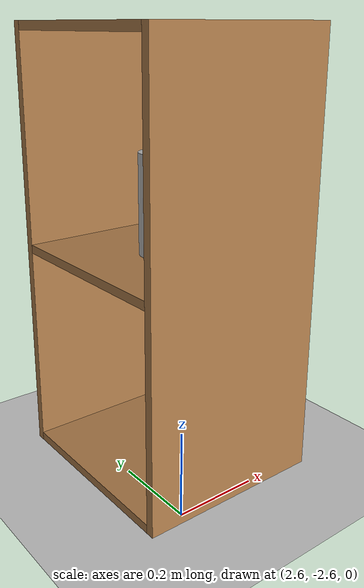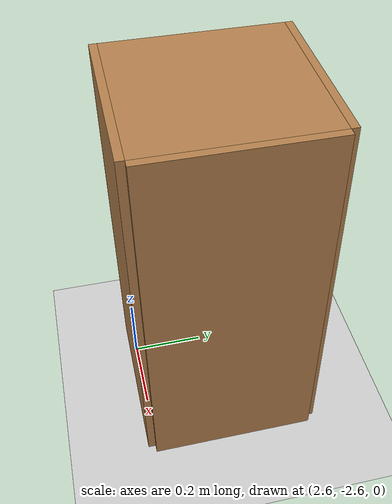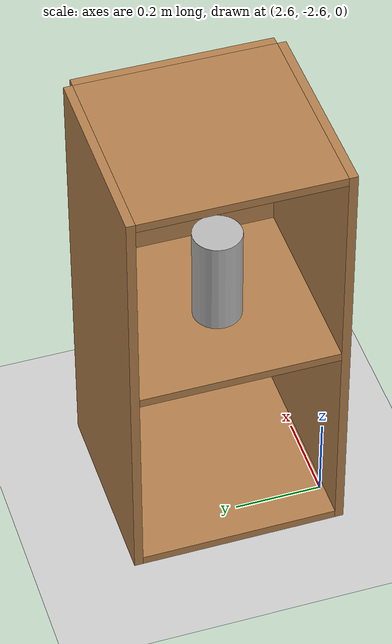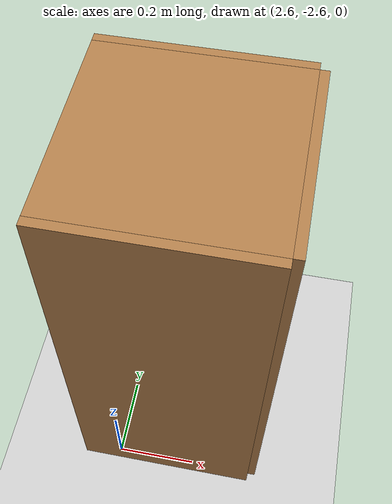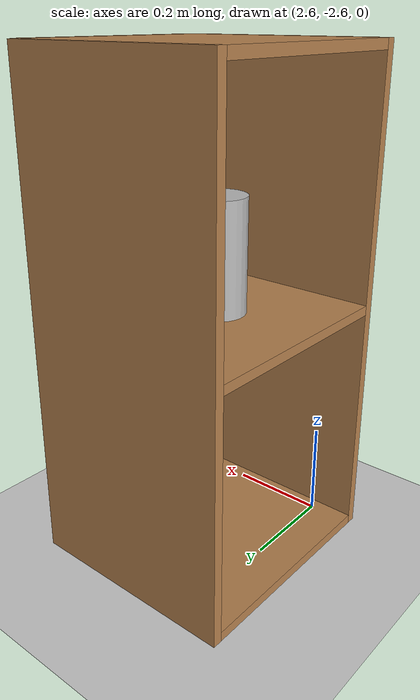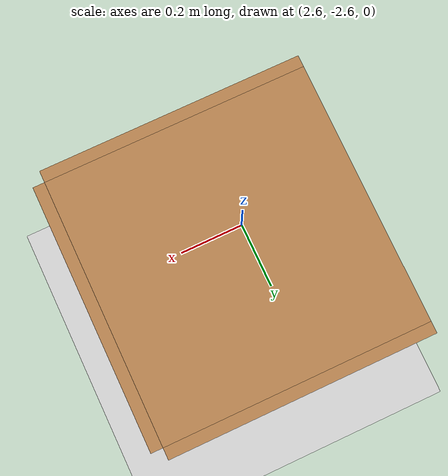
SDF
<sdf version="1.6">
 <world name="default">
  <light name="sun" type="directional">
   <pose>0 0 10 0 -0 0</pose>
   <diffuse>0.8 0.8 0.8 1</diffuse>
   <specular>0.1 0.1 0.1 1</specular>
   <attenuation>
    <range>1000</range>
    <constant>0.9</constant>
    <linear>0.01</linear>
    <quadratic>0.001</quadratic>
   </attenuation>
   <direction>-0.5 0.5 -1</direction>
  </light>
  <model name="ground_plane">
   <static>1</static>
   <link name="link">
    <collision name="collision">
     <geometry><plane><normal>0 0 1</normal><size>100 100</size></plane></geometry>
     <surface><friction><ode><mu>100</mu><mu2>50</mu2></ode></friction></surface>
    </collision>
    <visual name="visual">
     <cast_shadows>0</cast_shadows>
     <geometry><plane><normal>0 0 1</normal><size>100 100</size></plane></geometry>
     <material>
      <script><uri>file://media/materials/scripts/gazebo.material</uri><name>Gazebo/Grey</name></script>
     </material>
    </visual>
   </link>
  </model>
  <gravity>0 0 -9.8</gravity>
  <magnetic_field>6e-06 2.3e-05 -4.2e-05</magnetic_field>
  <atmosphere type="adiabatic"/>
  <physics name="default_physics" default="0" type="ode">
   <max_step_size>0.001</max_step_size>
   <real_time_factor>1</real_time_factor>
   <real_time_update_rate>1000</real_time_update_rate>
  </physics>
  <scene><ambient>0.4 0.4 0.4 1</ambient><background>0.7 0.7 0.7 1</background><shadows>1</shadows></scene>
  <spherical_coordinates>
   <surface_model>EARTH_WGS84</surface_model>
   <latitude_deg>0</latitude_deg>
   <longitude_deg>0</longitude_deg>
   <elevation>0</elevation>
   <heading_deg>0</heading_deg>
  </spherical_coordinates>
  <model name="cabinet">
   <static>1</static>
   <link name="cabinet_bottom_plate">
    <inertial>
     <pose>0 0 -1 0 -0 0</pose>
     <inertia><ixx>2.05</ixx><ixy>0</ixy><ixz>0</ixz><iyy>2.05</iyy><iyz>0</iyz><izz>2.05</izz></inertia>
     <mass>25</mass>
    </inertial>
    <collision name="cabinet_bottom_plate_geom">
     <pose>0 0 0.01 0 -0 0</pose>
     <geometry><box><size>0.45 0.45 0.02</size></box></geometry>
    </collision>
    <visual name="cabinet_bottom_plate_geom_visual">
     <pose>0 0 0.01 0 -0 0</pose>
     <geometry><box><size>0.45 0.45 0.02</size></box></geometry>
     <material>
      <script><uri>file://media/materials/scripts/gazebo.material</uri><name>Gazebo/Wood</name></script>
     </material>
    </visual>
    <collision name="cabinet_bottom_plate_geom_cabinet_back_plate">
     <pose>0.235 0 0.51 0 -0 0</pose>
     <geometry><box><size>0.02 0.45 1.02</size></box></geometry>
    </collision>
    <visual name="cabinet_bottom_plate_geom_cabinet_back_plate_visual">
     <pose>0.235 0 0.51 0 -0 0</pose>
     <geometry><box><size>0.02 0.45 1.02</size></box></geometry>
     <material>
      <script><uri>file://media/materials/scripts/gazebo.material</uri><name>Gazebo/Wood</name></script>
     </material>
    </visual>
    <collision name="cabinet_bottom_plate_geom_cabinet_left_plate">
     <pose>0 0.235 0.51 0 -0 0</pose>
     <geometry><box><size>0.45 0.02 1.02</size></box></geometry>
    </collision>
    <visual name="cabinet_bottom_plate_geom_cabinet_left_plate_visual">
     <pose>0 0.235 0.51 0 -0 0</pose>
     <geometry><box><size>0.45 0.02 1.02</size></box></geometry>
     <material>
      <script><uri>file://media/materials/scripts/gazebo.material</uri><name>Gazebo/Wood</name></script>
     </material>
    </visual>
    <collision name="cabinet_bottom_plate_geom_cabinet_middle_plate">
     <pose>0 0 0.51 0 -0 0</pose>
     <geometry><box><size>0.45 0.45 0.02</size></box></geometry>
    </collision>
    <visual name="cabinet_bottom_plate_geom_cabinet_middle_plate_visual">
     <pose>0 0 0.51 0 -0 0</pose>
     <geometry><box><size>0.45 0.45 0.02</size></box></geometry>
     <material>
      <script><uri>file://media/materials/scripts/gazebo.material</uri><name>Gazebo/Wood</name></script>
     </material>
    </visual>
    <collision name="cabinet_bottom_plate_geom_cabinet_right_plate">
     <pose>0 -0.235 0.51 0 -0 0</pose>
     <geometry><box><size>0.45 0.02 1.02</size></box></geometry>
    </collision>
    <visual name="cabinet_bottom_plate_geom_cabinet_right_plate_visual">
     <pose>0 -0.235 0.51 0 -0 0</pose>
     <geometry><box><size>0.45 0.02 1.02</size></box></geometry>
     <material>
      <script><uri>file://media/materials/scripts/gazebo.material</uri><name>Gazebo/Wood</name></script>
     </material>
    </visual>
    <collision name="cabinet_bottom_plate_geom_cabinet_top_plate">
     <pose>0 0 1.01 0 -0 0</pose>
     <geometry><box><size>0.45 0.45 0.02</size></box></geometry>
    </collision>
    <visual name="cabinet_bottom_plate_geom_cabinet_top_plate_visual">
     <pose>0 0 1.01 0 -0 0</pose>
     <geometry><box><size>0.45 0.45 0.02</size></box></geometry>
     <material>
      <script><uri>file://media/materials/scripts/gazebo.material</uri><name>Gazebo/Wood</name></script>
     </material>
    </visual>
   </link>
   <pose>2.73077 -2.37668 0 0 -0 0</pose>
  </model>
  <model name="beer">
   <link name="link">
    <pose>0 0 0.115 0 -0 0</pose>
    <inertial>
     <mass>0.39</mass>
     <inertia><ixx>0.00058</ixx><ixy>0</ixy><ixz>0</ixz><iyy>0.00058</iyy><iyz>0</iyz><izz>0.00019</izz></inertia>
    </inertial>
    <collision name="collision">
     <geometry><cylinder><radius>0.055</radius><length>0.23</length></cylinder></geometry>
    </collision>
    <visual name="visual">
     <geometry><cylinder><radius>0.055</radius><length>0.23</length></cylinder></geometry>
     <material>
      <script>
       <uri>model://beer/materials/scripts</uri>
       <uri>model://beer/materials/textures</uri>
       <name>Beer/Diffuse</name>
      </script>
     </material>
    </visual>
   </link>
   <pose>2.71128 -2.3898 0.519992 3.2e-05 6e-06 0.000599</pose>
  </model>
 </world>
</sdf>
